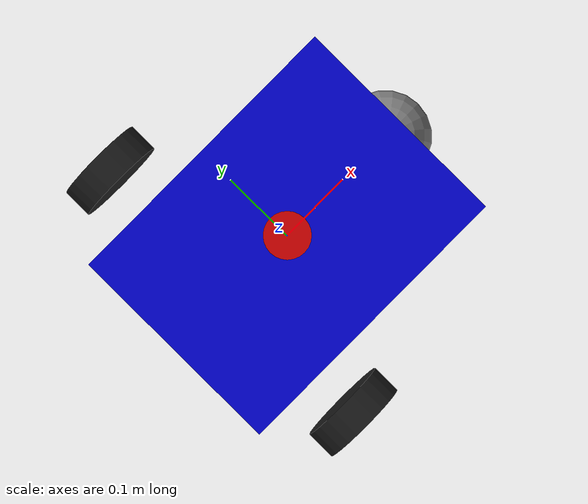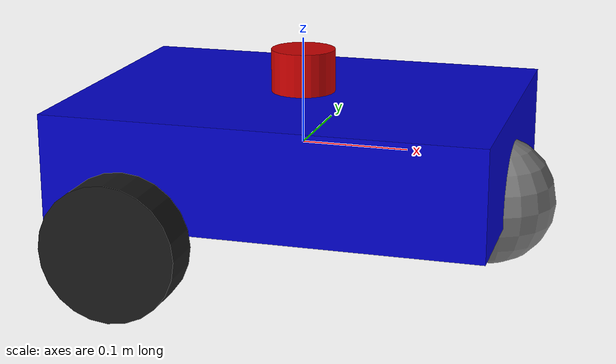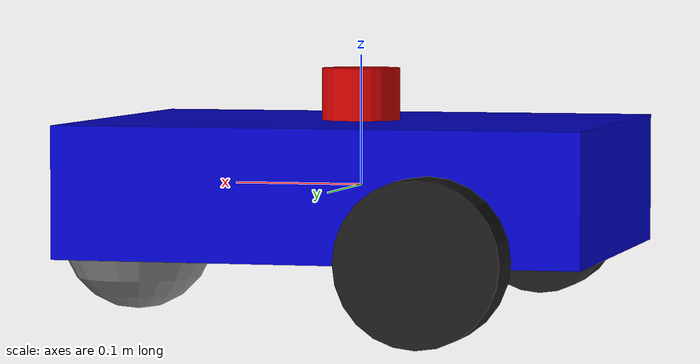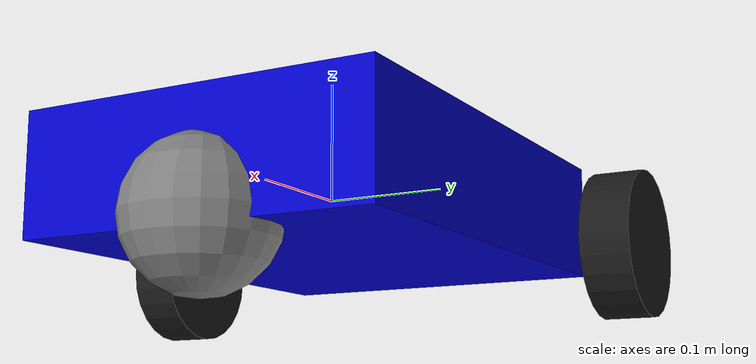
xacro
<?xml version="1.0"?>
<robot xmlns:xacro="http://www.ros.org/wiki/xacro" name="my_bot">

    <xacro:property name="base_length" value="0.4"/>
    <xacro:property name="base_width" value="0.3"/>
    <xacro:property name="base_height" value="0.1"/>
    <xacro:property name="wheel_radius" value="0.06"/>
    <xacro:property name="wheel_width" value="0.04"/>
    <xacro:property name="wheel_y_gap" value="0.05"/>

    <!-- 1. 底盘 -->
    <link name="base_link">
        <visual>
            <geometry><box size="${base_length} ${base_width} ${base_height}"/></geometry>
            <material name="blue"><color rgba="0 0 0.8 1"/></material>
        </visual>
        <collision>
            <geometry><box size="${base_length} ${base_width} ${base_height}"/></geometry>
        </collision>
        <inertial>
            <!-- 质量 10kg，正常重心 -->
            <mass value="10.0"/>
            <inertia ixx="0.1" ixy="0" ixz="0" iyy="0.1" iyz="0" izz="0.1"/>
        </inertial>
    </link>

    <joint name="base_footprint_joint" type="fixed">
        <parent link="base_link"/>
        <child link="base_footprint"/>
        <!-- 抬高底盘，给轮子留出空间 -->
        <origin xyz="0 0 0" rpy="0 0 0"/>
    </joint>
    <link name="base_footprint"/>

    <!-- 2. 驱动轮 (关键：靠后放置！) -->
    <xacro:macro name="wheel" params="prefix y_reflect">
        <link name="${prefix}_wheel_link">
            <visual>
                <geometry><cylinder radius="${wheel_radius}" length="${wheel_width}"/></geometry>
                <material name="black"><color rgba="0.1 0.1 0.1 1"/></material>
            </visual>
            <collision>
                <geometry><cylinder radius="${wheel_radius}" length="${wheel_width}"/></geometry>
            </collision>
            <inertial>
                <mass value="1.0"/>
                <inertia ixx="0.01" ixy="0" ixz="0" iyy="0.01" iyz="0" izz="0.01"/>
            </inertial>
        </link>

        <joint name="${prefix}_wheel_joint" type="continuous">
            <parent link="base_link"/>
            <child link="${prefix}_wheel_link"/>
            <!-- X轴改成 -0.1：把轮子挪到靠近车尾的地方！ -->
            <origin xyz="-0.1 ${y_reflect * (base_width/2 + wheel_width/2 + wheel_y_gap)} -0.04" rpy="-1.5708 0 0"/>
            <axis xyz="0 0 1"/>
        </joint>
    </xacro:macro>

    <xacro:wheel prefix="left" y_reflect="1"/>
    <xacro:wheel prefix="right" y_reflect="-1"/>

    <!-- 3. 万向轮 (关键：放到车头最前端) -->
    <link name="caster_link">
        <visual>
            <geometry><sphere radius="${wheel_radius}"/></geometry>
            <material name="grey"><color rgba="0.5 0.5 0.5 1"/></material>
        </visual>
        <collision>
            <geometry><sphere radius="${wheel_radius}"/></geometry>
        </collision>
        <inertial>
            <mass value="0.1"/>
            <inertia ixx="0.001" ixy="0" ixz="0" iyy="0.001" iyz="0" izz="0.001"/>
        </inertial>
    </link>

    <joint name="caster_joint" type="fixed">
        <parent link="base_link"/>
        <child link="caster_link"/>
        <!-- X轴改成 0.18：顶在车头最前面 -->
        <origin xyz="0.18 0 -0.04" rpy="0 0 0"/>
    </joint>

    <!-- 4. 激光雷达 -->
    <link name="lidar_link">
        <visual>
            <geometry><cylinder radius="0.03" length="0.04"/></geometry>
            <material name="red"><color rgba="0.8 0 0 1"/></material>
        </visual>
        <collision>
            <geometry><cylinder radius="0.03" length="0.04"/></geometry>
        </collision>
        <inertial>
            <mass value="0.1"/>
            <inertia ixx="0.001" ixy="0" ixz="0" iyy="0.001" iyz="0" izz="0.001"/>
        </inertial>
    </link>

    <joint name="lidar_joint" type="fixed">
        <parent link="base_link"/>
        <child link="lidar_link"/>
        <!-- 雷达正前方 -->
        <!--Roll（翻滚角，对应 X 轴）Pitch（俯仰角，对应 Y 轴）Yaw（偏航角，对应 Z 轴） -->
        <origin xyz="0 0 ${base_height/2 + 0.02}" rpy="0 0 3.14159"/>
    </joint>

    <!-- 5. Gazebo 物理设置 -->
    <gazebo>
        <plugin filename="libgz-sim-diff-drive-system.so" name="gz::sim::systems::DiffDrive">
            <left_joint>left_wheel_joint</left_joint>
            <right_joint>right_wheel_joint</right_joint>
            <wheel_separation>0.44</wheel_separation>
            <wheel_radius>0.06</wheel_radius>
            <topic>cmd_vel</topic>
            <!-- 限制加速度，实现平滑起步 -->
            <max_linear_acceleration>0.5</max_linear_acceleration>
        </plugin>
    </gazebo>

    <!-- 雷达插件 -->
    <gazebo reference="lidar_link">
        <sensor name="lidar" type="gpu_lidar">
            <always_on>true</always_on>
            <visualize>true</visualize>
            <update_rate>10</update_rate>
            <topic>/scan</topic>
            <lidar>
                <scan>
                    <horizontal>
                        <samples>360</samples> <resolution>1</resolution>
                        <min_angle>-3.14159</min_angle><max_angle>3.14159</max_angle>
                    </horizontal>
                </scan>
                <range><min>0.12</min><max>3.5</max><resolution>0.015</resolution></range>
            </lidar>
        </sensor>
    </gazebo>

    <!-- 摩擦力：驱动轮抓地，万向轮顺滑 -->
    <gazebo reference="left_wheel_link"><mu1>2.0</mu1><mu2>2.0</mu2></gazebo>
    <gazebo reference="right_wheel_link"><mu1>2.0</mu1><mu2>2.0</mu2></gazebo>
    <gazebo reference="caster_link"><mu1>0.0</mu1><mu2>0.0</mu2></gazebo>
    <gazebo reference="base_link"><material>Gazebo/Blue</material></gazebo>
</robot>
